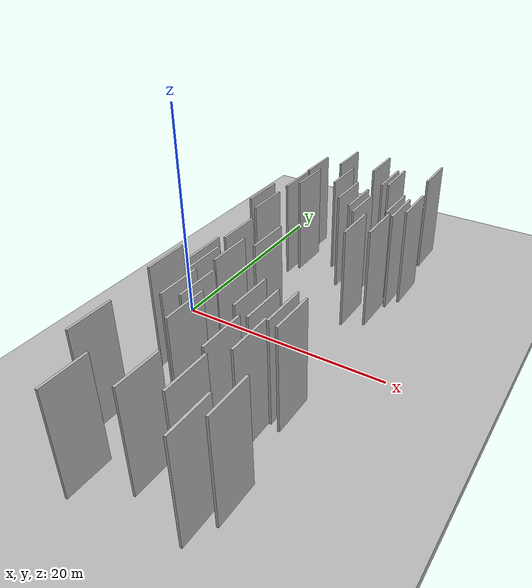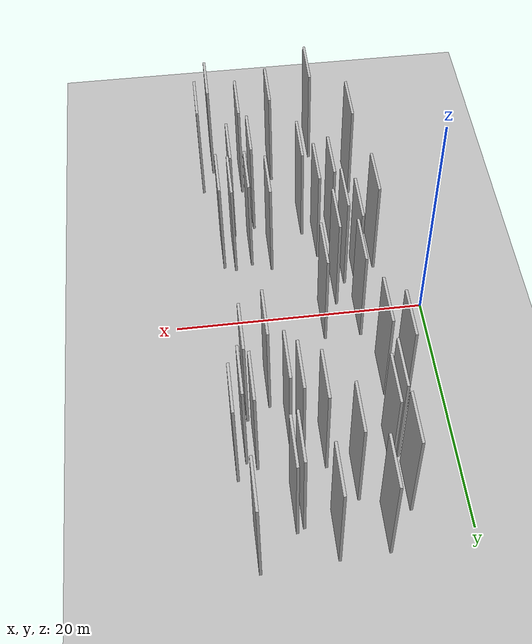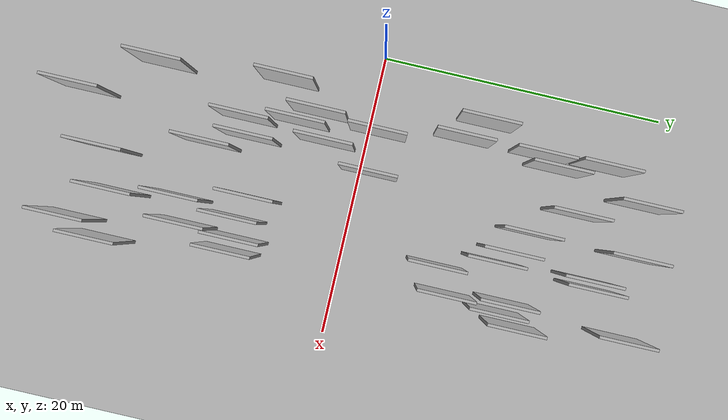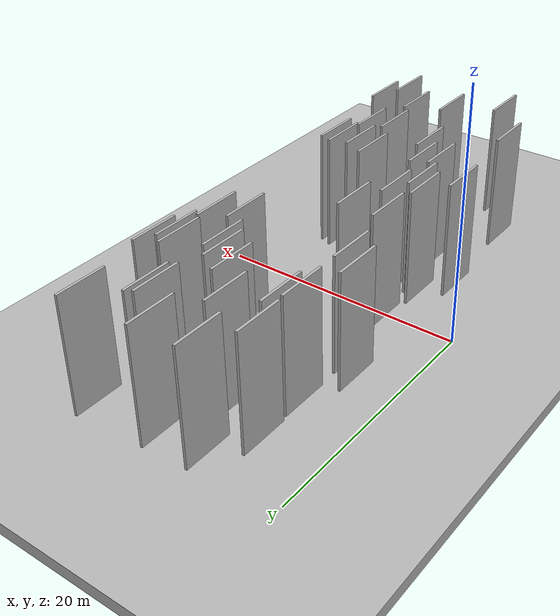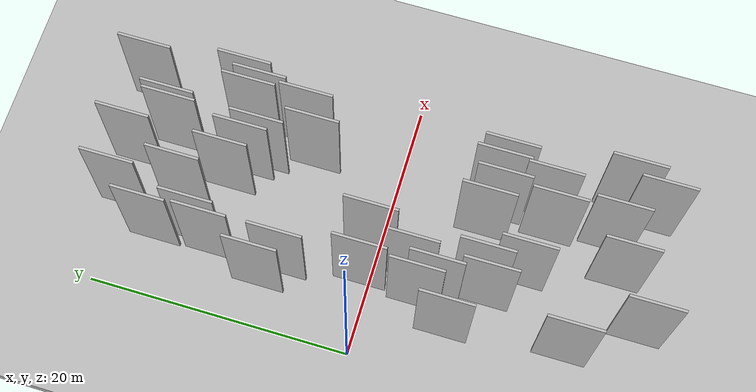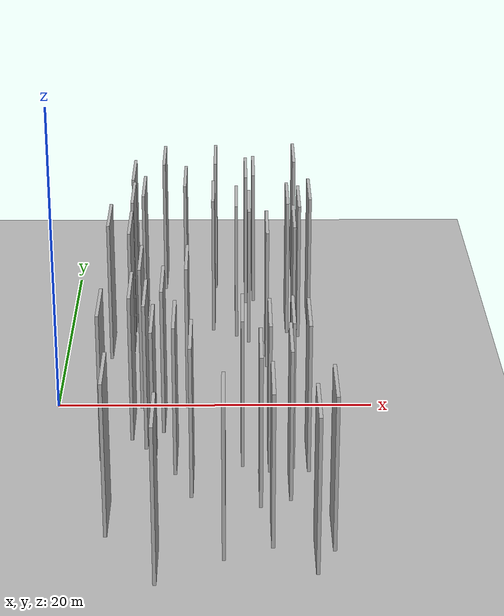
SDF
<?xml version="1.0" encoding="utf-8"?>

<sdf version="1.6">

   <world name="default">

      <gui fullscreen="0">

         <camera name="user_camera">

            <pose>-15 0 4.57585 0 0 0</pose>

            <view_controller>orbit</view_controller>

         </camera>

      </gui>

      <scene>

         <sky>

           <clouds>

             <speed>12</speed>

           </clouds>

         </sky>

         <ambient>0.4 0.4 0.4 1</ambient>

         <background>0.7 0.7 0.7 1</background>

         <shadows>1</shadows>

      </scene>

      <gravity>0 0 -9.8066</gravity>

      <magnetic_field>6e-06 2.3e-05 -4.2e-05</magnetic_field>

      <physics default="0" name="default_physics" type="ode">

         <ode>

            <solver>

               <type>quick</type>

               <iters>10</iters>

               <sor>1.0</sor>

               <use_dynamic_moi_rescaling>0</use_dynamic_moi_rescaling>

            </solver>

            <constraints>

               <cfm>0</cfm>

               <erp>0.2</erp>

               <contact_max_correcting_vel>100</contact_max_correcting_vel>

               <contact_surface_layer>0.001</contact_surface_layer>

            </constraints>

         </ode>

         <max_step_size>0.004</max_step_size>

         <real_time_factor>1</real_time_factor>

         <real_time_update_rate>250</real_time_update_rate>

      </physics>

      <light name="sun" type="directional">

         <cast_shadows>1</cast_shadows>

         <pose>0 0 10 0 0 0</pose>

         <diffuse>0.8 0.8 0.8 1</diffuse>

         <specular>0.2 0.2 0.2 1</specular>

         <attenuation>

            <range>1000</range>

            <constant>0.9</constant>

            <linear>0.01</linear>

            <quadratic>0.001</quadratic>

         </attenuation>

         <direction>-0.5 0.1 -0.9</direction>

      </light>

      <include>

         <name>ground_plane_1</name>

         <uri>model://HANNAS_ground_plane</uri>

         <pose>0 0 0  0 0 0</pose>

      </include>

      <include>

         <name>ground_plane_2</name>

         <uri>model://HANNAS_ground_plane</uri>

         <pose>100 0 0  0 0 0</pose>

      </include>

      <model name="HANNAS_wall_1">

         <static>1</static>

         <pose frame="">6.4641 -8.3919 0.0 0.000000 0.000000 1.570796</pose>

         <link name="link">

            <pose frame="">0 0 5.00 0 0 0</pose>

            <collision name="collision">

               <geometry>

                  <box>

                     <size>4.00 0.2 10.00</size>

                  </box>

               </geometry>

               <max_contacts>10</max_contacts>

               <surface>

                  <contact>

                     <ode/>

                  </contact>

                  <bounce/>

                  <friction>

                     <torsional>

                        <ode/>

                     </torsional>

                     <ode/>

                  </friction>

               </surface>

            </collision>

            <visual name="visual">

               <cast_shadows>0</cast_shadows>

               <geometry>

                  <box>

                     <size>4.00 0.2 10.00</size>

                  </box>

               </geometry>

               <material>

                  <script>

                     <uri>model://HANNAS_wall/materials/scripts</uri>

                     <uri>model://HANNAS_wall/materials/textures</uri>

                     <name>vrc/HANNAS_wall</name>

                  </script>

               </material>

            </visual>

            <self_collide>0</self_collide>

            <enable_wind>0</enable_wind>

            <kinematic>0</kinematic>

         </link>

      </model>

      <model name="HANNAS_wall_2">

         <static>1</static>

         <pose frame="">3.2707 -6.1076 0.0 0.000000 0.000000 1.570796</pose>

         <link name="link">

            <pose frame="">0 0 5.00 0 0 0</pose>

            <collision name="collision">

               <geometry>

                  <box>

                     <size>4.00 0.2 10.00</size>

                  </box>

               </geometry>

               <max_contacts>10</max_contacts>

               <surface>

                  <contact>

                     <ode/>

                  </contact>

                  <bounce/>

                  <friction>

                     <torsional>

                        <ode/>

                     </torsional>

                     <ode/>

                  </friction>

               </surface>

            </collision>

            <visual name="visual">

               <cast_shadows>0</cast_shadows>

               <geometry>

                  <box>

                     <size>4.00 0.2 10.00</size>

                  </box>

               </geometry>

               <material>

                  <script>

                     <uri>model://HANNAS_wall/materials/scripts</uri>

                     <uri>model://HANNAS_wall/materials/textures</uri>

                     <name>vrc/HANNAS_wall</name>

                  </script>

               </material>

            </visual>

            <self_collide>0</self_collide>

            <enable_wind>0</enable_wind>

            <kinematic>0</kinematic>

         </link>

      </model>

      <model name="HANNAS_wall_3">

         <static>1</static>

         <pose frame="">4.9851 -3.5386 0.0 0.000000 0.000000 1.570796</pose>

         <link name="link">

            <pose frame="">0 0 5.00 0 0 0</pose>

            <collision name="collision">

               <geometry>

                  <box>

                     <size>4.00 0.2 10.00</size>

                  </box>

               </geometry>

               <max_contacts>10</max_contacts>

               <surface>

                  <contact>

                     <ode/>

                  </contact>

                  <bounce/>

                  <friction>

                     <torsional>

                        <ode/>

                     </torsional>

                     <ode/>

                  </friction>

               </surface>

            </collision>

            <visual name="visual">

               <cast_shadows>0</cast_shadows>

               <geometry>

                  <box>

                     <size>4.00 0.2 10.00</size>

                  </box>

               </geometry>

               <material>

                  <script>

                     <uri>model://HANNAS_wall/materials/scripts</uri>

                     <uri>model://HANNAS_wall/materials/textures</uri>

                     <name>vrc/HANNAS_wall</name>

                  </script>

               </material>

            </visual>

            <self_collide>0</self_collide>

            <enable_wind>0</enable_wind>

            <kinematic>0</kinematic>

         </link>

      </model>

      <model name="HANNAS_wall_4">

         <static>1</static>

         <pose frame="">5.1430 13.1604 0.0 0.000000 0.000000 1.570796</pose>

         <link name="link">

            <pose frame="">0 0 5.00 0 0 0</pose>

            <collision name="collision">

               <geometry>

                  <box>

                     <size>4.00 0.2 10.00</size>

                  </box>

               </geometry>

               <max_contacts>10</max_contacts>

               <surface>

                  <contact>

                     <ode/>

                  </contact>

                  <bounce/>

                  <friction>

                     <torsional>

                        <ode/>

                     </torsional>

                     <ode/>

                  </friction>

               </surface>

            </collision>

            <visual name="visual">

               <cast_shadows>0</cast_shadows>

               <geometry>

                  <box>

                     <size>4.00 0.2 10.00</size>

                  </box>

               </geometry>

               <material>

                  <script>

                     <uri>model://HANNAS_wall/materials/scripts</uri>

                     <uri>model://HANNAS_wall/materials/textures</uri>

                     <name>vrc/HANNAS_wall</name>

                  </script>

               </material>

            </visual>

            <self_collide>0</self_collide>

            <enable_wind>0</enable_wind>

            <kinematic>0</kinematic>

         </link>

      </model>

      <model name="HANNAS_wall_5">

         <static>1</static>

         <pose frame="">13.3488 -16.0452 0.0 0.000000 0.000000 1.570796</pose>

         <link name="link">

            <pose frame="">0 0 5.00 0 0 0</pose>

            <collision name="collision">

               <geometry>

                  <box>

                     <size>4.00 0.2 10.00</size>

                  </box>

               </geometry>

               <max_contacts>10</max_contacts>

               <surface>

                  <contact>

                     <ode/>

                  </contact>

                  <bounce/>

                  <friction>

                     <torsional>

                        <ode/>

                     </torsional>

                     <ode/>

                  </friction>

               </surface>

            </collision>

            <visual name="visual">

               <cast_shadows>0</cast_shadows>

               <geometry>

                  <box>

                     <size>4.00 0.2 10.00</size>

                  </box>

               </geometry>

               <material>

                  <script>

                     <uri>model://HANNAS_wall/materials/scripts</uri>

                     <uri>model://HANNAS_wall/materials/textures</uri>

                     <name>vrc/HANNAS_wall</name>

                  </script>

               </material>

            </visual>

            <self_collide>0</self_collide>

            <enable_wind>0</enable_wind>

            <kinematic>0</kinematic>

         </link>

      </model>

      <model name="HANNAS_wall_6">

         <static>1</static>

         <pose frame="">14.4889 -10.9155 0.0 0.000000 0.000000 1.570796</pose>

         <link name="link">

            <pose frame="">0 0 5.00 0 0 0</pose>

            <collision name="collision">

               <geometry>

                  <box>

                     <size>4.00 0.2 10.00</size>

                  </box>

               </geometry>

               <max_contacts>10</max_contacts>

               <surface>

                  <contact>

                     <ode/>

                  </contact>

                  <bounce/>

                  <friction>

                     <torsional>

                        <ode/>

                     </torsional>

                     <ode/>

                  </friction>

               </surface>

            </collision>

            <visual name="visual">

               <cast_shadows>0</cast_shadows>

               <geometry>

                  <box>

                     <size>4.00 0.2 10.00</size>

                  </box>

               </geometry>

               <material>

                  <script>

                     <uri>model://HANNAS_wall/materials/scripts</uri>

                     <uri>model://HANNAS_wall/materials/textures</uri>

                     <name>vrc/HANNAS_wall</name>

                  </script>

               </material>

            </visual>

            <self_collide>0</self_collide>

            <enable_wind>0</enable_wind>

            <kinematic>0</kinematic>

         </link>

      </model>

      <model name="HANNAS_wall_7">

         <static>1</static>

         <pose frame="">4.4972 6.5110 0.0 0.000000 0.000000 1.570796</pose>

         <link name="link">

            <pose frame="">0 0 5.00 0 0 0</pose>

            <collision name="collision">

               <geometry>

                  <box>

                     <size>4.00 0.2 10.00</size>

                  </box>

               </geometry>

               <max_contacts>10</max_contacts>

               <surface>

                  <contact>

                     <ode/>

                  </contact>

                  <bounce/>

                  <friction>

                     <torsional>

                        <ode/>

                     </torsional>

                     <ode/>

                  </friction>

               </surface>

            </collision>

            <visual name="visual">

               <cast_shadows>0</cast_shadows>

               <geometry>

                  <box>

                     <size>4.00 0.2 10.00</size>

                  </box>

               </geometry>

               <material>

                  <script>

                     <uri>model://HANNAS_wall/materials/scripts</uri>

                     <uri>model://HANNAS_wall/materials/textures</uri>

                     <name>vrc/HANNAS_wall</name>

                  </script>

               </material>

            </visual>

            <self_collide>0</self_collide>

            <enable_wind>0</enable_wind>

            <kinematic>0</kinematic>

         </link>

      </model>

      <model name="HANNAS_wall_8">

         <static>1</static>

         <pose frame="">16.3641 12.5826 0.0 0.000000 0.000000 1.570796</pose>

         <link name="link">

            <pose frame="">0 0 5.00 0 0 0</pose>

            <collision name="collision">

               <geometry>

                  <box>

                     <size>4.00 0.2 10.00</size>

                  </box>

               </geometry>

               <max_contacts>10</max_contacts>

               <surface>

                  <contact>

                     <ode/>

                  </contact>

                  <bounce/>

                  <friction>

                     <torsional>

                        <ode/>

                     </torsional>

                     <ode/>

                  </friction>

               </surface>

            </collision>

            <visual name="visual">

               <cast_shadows>0</cast_shadows>

               <geometry>

                  <box>

                     <size>4.00 0.2 10.00</size>

                  </box>

               </geometry>

               <material>

                  <script>

                     <uri>model://HANNAS_wall/materials/scripts</uri>

                     <uri>model://HANNAS_wall/materials/textures</uri>

                     <name>vrc/HANNAS_wall</name>

                  </script>

               </material>

            </visual>

            <self_collide>0</self_collide>

            <enable_wind>0</enable_wind>

            <kinematic>0</kinematic>

         </link>

      </model>

      <model name="HANNAS_wall_9">

         <static>1</static>

         <pose frame="">11.7255 -6.8692 0.0 0.000000 0.000000 1.570796</pose>

         <link name="link">

            <pose frame="">0 0 5.00 0 0 0</pose>

            <collision name="collision">

               <geometry>

                  <box>

                     <size>4.00 0.2 10.00</size>

                  </box>

               </geometry>

               <max_contacts>10</max_contacts>

               <surface>

                  <contact>

                     <ode/>

                  </contact>

                  <bounce/>

                  <friction>

                     <torsional>

                        <ode/>

                     </torsional>

                     <ode/>

                  </friction>

               </surface>

            </collision>

            <visual name="visual">

               <cast_shadows>0</cast_shadows>

               <geometry>

                  <box>

                     <size>4.00 0.2 10.00</size>

                  </box>

               </geometry>

               <material>

                  <script>

                     <uri>model://HANNAS_wall/materials/scripts</uri>

                     <uri>model://HANNAS_wall/materials/textures</uri>

                     <name>vrc/HANNAS_wall</name>

                  </script>

               </material>

            </visual>

            <self_collide>0</self_collide>

            <enable_wind>0</enable_wind>

            <kinematic>0</kinematic>

         </link>

      </model>

      <model name="HANNAS_wall_10">

         <static>1</static>

         <pose frame="">6.8832 -2.6249 0.0 0.000000 0.000000 1.570796</pose>

         <link name="link">

            <pose frame="">0 0 5.00 0 0 0</pose>

            <collision name="collision">

               <geometry>

                  <box>

                     <size>4.00 0.2 10.00</size>

                  </box>

               </geometry>

               <max_contacts>10</max_contacts>

               <surface>

                  <contact>

                     <ode/>

                  </contact>

                  <bounce/>

                  <friction>

                     <torsional>

                        <ode/>

                     </torsional>

                     <ode/>

                  </friction>

               </surface>

            </collision>

            <visual name="visual">

               <cast_shadows>0</cast_shadows>

               <geometry>

                  <box>

                     <size>4.00 0.2 10.00</size>

                  </box>

               </geometry>

               <material>

                  <script>

                     <uri>model://HANNAS_wall/materials/scripts</uri>

                     <uri>model://HANNAS_wall/materials/textures</uri>

                     <name>vrc/HANNAS_wall</name>

                  </script>

               </material>

            </visual>

            <self_collide>0</self_collide>

            <enable_wind>0</enable_wind>

            <kinematic>0</kinematic>

         </link>

      </model>

      <model name="HANNAS_wall_11">

         <static>1</static>

         <pose frame="">7.9041 15.1104 0.0 0.000000 0.000000 1.570796</pose>

         <link name="link">

            <pose frame="">0 0 5.00 0 0 0</pose>

            <collision name="collision">

               <geometry>

                  <box>

                     <size>4.00 0.2 10.00</size>

                  </box>

               </geometry>

               <max_contacts>10</max_contacts>

               <surface>

                  <contact>

                     <ode/>

                  </contact>

                  <bounce/>

                  <friction>

                     <torsional>

                        <ode/>

                     </torsional>

                     <ode/>

                  </friction>

               </surface>

            </collision>

            <visual name="visual">

               <cast_shadows>0</cast_shadows>

               <geometry>

                  <box>

                     <size>4.00 0.2 10.00</size>

                  </box>

               </geometry>

               <material>

                  <script>

                     <uri>model://HANNAS_wall/materials/scripts</uri>

                     <uri>model://HANNAS_wall/materials/textures</uri>

                     <name>vrc/HANNAS_wall</name>

                  </script>

               </material>

            </visual>

            <self_collide>0</self_collide>

            <enable_wind>0</enable_wind>

            <kinematic>0</kinematic>

         </link>

      </model>

      <model name="HANNAS_wall_12">

         <static>1</static>

         <pose frame="">3.0862 7.8580 0.0 0.000000 0.000000 1.570796</pose>

         <link name="link">

            <pose frame="">0 0 5.00 0 0 0</pose>

            <collision name="collision">

               <geometry>

                  <box>

                     <size>4.00 0.2 10.00</size>

                  </box>

               </geometry>

               <max_contacts>10</max_contacts>

               <surface>

                  <contact>

                     <ode/>

                  </contact>

                  <bounce/>

                  <friction>

                     <torsional>

                        <ode/>

                     </torsional>

                     <ode/>

                  </friction>

               </surface>

            </collision>

            <visual name="visual">

               <cast_shadows>0</cast_shadows>

               <geometry>

                  <box>

                     <size>4.00 0.2 10.00</size>

                  </box>

               </geometry>

               <material>

                  <script>

                     <uri>model://HANNAS_wall/materials/scripts</uri>

                     <uri>model://HANNAS_wall/materials/textures</uri>

                     <name>vrc/HANNAS_wall</name>

                  </script>

               </material>

            </visual>

            <self_collide>0</self_collide>

            <enable_wind>0</enable_wind>

            <kinematic>0</kinematic>

         </link>

      </model>

      <model name="HANNAS_wall_13">

         <static>1</static>

         <pose frame="">7.7329 -7.8007 0.0 0.000000 0.000000 1.570796</pose>

         <link name="link">

            <pose frame="">0 0 5.00 0 0 0</pose>

            <collision name="collision">

               <geometry>

                  <box>

                     <size>4.00 0.2 10.00</size>

                  </box>

               </geometry>

               <max_contacts>10</max_contacts>

               <surface>

                  <contact>

                     <ode/>

                  </contact>

                  <bounce/>

                  <friction>

                     <torsional>

                        <ode/>

                     </torsional>

                     <ode/>

                  </friction>

               </surface>

            </collision>

            <visual name="visual">

               <cast_shadows>0</cast_shadows>

               <geometry>

                  <box>

                     <size>4.00 0.2 10.00</size>

                  </box>

               </geometry>

               <material>

                  <script>

                     <uri>model://HANNAS_wall/materials/scripts</uri>

                     <uri>model://HANNAS_wall/materials/textures</uri>

                     <name>vrc/HANNAS_wall</name>

                  </script>

               </material>

            </visual>

            <self_collide>0</self_collide>

            <enable_wind>0</enable_wind>

            <kinematic>0</kinematic>

         </link>

      </model>

      <model name="HANNAS_wall_14">

         <static>1</static>

         <pose frame="">12.0734 16.8459 0.0 0.000000 0.000000 1.570796</pose>

         <link name="link">

            <pose frame="">0 0 5.00 0 0 0</pose>

            <collision name="collision">

               <geometry>

                  <box>

                     <size>4.00 0.2 10.00</size>

                  </box>

               </geometry>

               <max_contacts>10</max_contacts>

               <surface>

                  <contact>

                     <ode/>

                  </contact>

                  <bounce/>

                  <friction>

                     <torsional>

                        <ode/>

                     </torsional>

                     <ode/>

                  </friction>

               </surface>

            </collision>

            <visual name="visual">

               <cast_shadows>0</cast_shadows>

               <geometry>

                  <box>

                     <size>4.00 0.2 10.00</size>

                  </box>

               </geometry>

               <material>

                  <script>

                     <uri>model://HANNAS_wall/materials/scripts</uri>

                     <uri>model://HANNAS_wall/materials/textures</uri>

                     <name>vrc/HANNAS_wall</name>

                  </script>

               </material>

            </visual>

            <self_collide>0</self_collide>

            <enable_wind>0</enable_wind>

            <kinematic>0</kinematic>

         </link>

      </model>

      <model name="HANNAS_wall_15">

         <static>1</static>

         <pose frame="">15.5030 19.8872 0.0 0.000000 0.000000 1.570796</pose>

         <link name="link">

            <pose frame="">0 0 5.00 0 0 0</pose>

            <collision name="collision">

               <geometry>

                  <box>

                     <size>4.00 0.2 10.00</size>

                  </box>

               </geometry>

               <max_contacts>10</max_contacts>

               <surface>

                  <contact>

                     <ode/>

                  </contact>

                  <bounce/>

                  <friction>

                     <torsional>

                        <ode/>

                     </torsional>

                     <ode/>

                  </friction>

               </surface>

            </collision>

            <visual name="visual">

               <cast_shadows>0</cast_shadows>

               <geometry>

                  <box>

                     <size>4.00 0.2 10.00</size>

                  </box>

               </geometry>

               <material>

                  <script>

                     <uri>model://HANNAS_wall/materials/scripts</uri>

                     <uri>model://HANNAS_wall/materials/textures</uri>

                     <name>vrc/HANNAS_wall</name>

                  </script>

               </material>

            </visual>

            <self_collide>0</self_collide>

            <enable_wind>0</enable_wind>

            <kinematic>0</kinematic>

         </link>

      </model>

      <model name="HANNAS_wall_16">

         <static>1</static>

         <pose frame="">4.0204 -14.8153 0.0 0.000000 0.000000 1.570796</pose>

         <link name="link">

            <pose frame="">0 0 5.00 0 0 0</pose>

            <collision name="collision">

               <geometry>

                  <box>

                     <size>4.00 0.2 10.00</size>

                  </box>

               </geometry>

               <max_contacts>10</max_contacts>

               <surface>

                  <contact>

                     <ode/>

                  </contact>

                  <bounce/>

                  <friction>

                     <torsional>

                        <ode/>

                     </torsional>

                     <ode/>

                  </friction>

               </surface>

            </collision>

            <visual name="visual">

               <cast_shadows>0</cast_shadows>

               <geometry>

                  <box>

                     <size>4.00 0.2 10.00</size>

                  </box>

               </geometry>

               <material>

                  <script>

                     <uri>model://HANNAS_wall/materials/scripts</uri>

                     <uri>model://HANNAS_wall/materials/textures</uri>

                     <name>vrc/HANNAS_wall</name>

                  </script>

               </material>

            </visual>

            <self_collide>0</self_collide>

            <enable_wind>0</enable_wind>

            <kinematic>0</kinematic>

         </link>

      </model>

      <model name="HANNAS_wall_17">

         <static>1</static>

         <pose frame="">16.7420 -16.3903 0.0 0.000000 0.000000 1.570796</pose>

         <link name="link">

            <pose frame="">0 0 5.00 0 0 0</pose>

            <collision name="collision">

               <geometry>

                  <box>

                     <size>4.00 0.2 10.00</size>

                  </box>

               </geometry>

               <max_contacts>10</max_contacts>

               <surface>

                  <contact>

                     <ode/>

                  </contact>

                  <bounce/>

                  <friction>

                     <torsional>

                        <ode/>

                     </torsional>

                     <ode/>

                  </friction>

               </surface>

            </collision>

            <visual name="visual">

               <cast_shadows>0</cast_shadows>

               <geometry>

                  <box>

                     <size>4.00 0.2 10.00</size>

                  </box>

               </geometry>

               <material>

                  <script>

                     <uri>model://HANNAS_wall/materials/scripts</uri>

                     <uri>model://HANNAS_wall/materials/textures</uri>

                     <name>vrc/HANNAS_wall</name>

                  </script>

               </material>

            </visual>

            <self_collide>0</self_collide>

            <enable_wind>0</enable_wind>

            <kinematic>0</kinematic>

         </link>

      </model>

      <model name="HANNAS_wall_18">

         <static>1</static>

         <pose frame="">12.6062 17.1586 0.0 0.000000 0.000000 1.570796</pose>

         <link name="link">

            <pose frame="">0 0 5.00 0 0 0</pose>

            <collision name="collision">

               <geometry>

                  <box>

                     <size>4.00 0.2 10.00</size>

                  </box>

               </geometry>

               <max_contacts>10</max_contacts>

               <surface>

                  <contact>

                     <ode/>

                  </contact>

                  <bounce/>

                  <friction>

                     <torsional>

                        <ode/>

                     </torsional>

                     <ode/>

                  </friction>

               </surface>

            </collision>

            <visual name="visual">

               <cast_shadows>0</cast_shadows>

               <geometry>

                  <box>

                     <size>4.00 0.2 10.00</size>

                  </box>

               </geometry>

               <material>

                  <script>

                     <uri>model://HANNAS_wall/materials/scripts</uri>

                     <uri>model://HANNAS_wall/materials/textures</uri>

                     <name>vrc/HANNAS_wall</name>

                  </script>

               </material>

            </visual>

            <self_collide>0</self_collide>

            <enable_wind>0</enable_wind>

            <kinematic>0</kinematic>

         </link>

      </model>

      <model name="HANNAS_wall_19">

         <static>1</static>

         <pose frame="">6.3363 19.3826 0.0 0.000000 0.000000 1.570796</pose>

         <link name="link">

            <pose frame="">0 0 5.00 0 0 0</pose>

            <collision name="collision">

               <geometry>

                  <box>

                     <size>4.00 0.2 10.00</size>

                  </box>

               </geometry>

               <max_contacts>10</max_contacts>

               <surface>

                  <contact>

                     <ode/>

                  </contact>

                  <bounce/>

                  <friction>

                     <torsional>

                        <ode/>

                     </torsional>

                     <ode/>

                  </friction>

               </surface>

            </collision>

            <visual name="visual">

               <cast_shadows>0</cast_shadows>

               <geometry>

                  <box>

                     <size>4.00 0.2 10.00</size>

                  </box>

               </geometry>

               <material>

                  <script>

                     <uri>model://HANNAS_wall/materials/scripts</uri>

                     <uri>model://HANNAS_wall/materials/textures</uri>

                     <name>vrc/HANNAS_wall</name>

                  </script>

               </material>

            </visual>

            <self_collide>0</self_collide>

            <enable_wind>0</enable_wind>

            <kinematic>0</kinematic>

         </link>

      </model>

      <model name="HANNAS_wall_20">

         <static>1</static>

         <pose frame="">14.8524 11.7805 0.0 0.000000 0.000000 1.570796</pose>

         <link name="link">

            <pose frame="">0 0 5.00 0 0 0</pose>

            <collision name="collision">

               <geometry>

                  <box>

                     <size>4.00 0.2 10.00</size>

                  </box>

               </geometry>

               <max_contacts>10</max_contacts>

               <surface>

                  <contact>

                     <ode/>

                  </contact>

                  <bounce/>

                  <friction>

                     <torsional>

                        <ode/>

                     </torsional>

                     <ode/>

                  </friction>

               </surface>

            </collision>

            <visual name="visual">

               <cast_shadows>0</cast_shadows>

               <geometry>

                  <box>

                     <size>4.00 0.2 10.00</size>

                  </box>

               </geometry>

               <material>

                  <script>

                     <uri>model://HANNAS_wall/materials/scripts</uri>

                     <uri>model://HANNAS_wall/materials/textures</uri>

                     <name>vrc/HANNAS_wall</name>

                  </script>

               </material>

            </visual>

            <self_collide>0</self_collide>

            <enable_wind>0</enable_wind>

            <kinematic>0</kinematic>

         </link>

      </model>

      <model name="HANNAS_wall_21">

         <static>1</static>

         <pose frame="">15.6039 11.2042 0.0 0.000000 0.000000 1.570796</pose>

         <link name="link">

            <pose frame="">0 0 5.00 0 0 0</pose>

            <collision name="collision">

               <geometry>

                  <box>

                     <size>4.00 0.2 10.00</size>

                  </box>

               </geometry>

               <max_contacts>10</max_contacts>

               <surface>

                  <contact>

                     <ode/>

                  </contact>

                  <bounce/>

                  <friction>

                     <torsional>

                        <ode/>

                     </torsional>

                     <ode/>

                  </friction>

               </surface>

            </collision>

            <visual name="visual">

               <cast_shadows>0</cast_shadows>

               <geometry>

                  <box>

                     <size>4.00 0.2 10.00</size>

                  </box>

               </geometry>

               <material>

                  <script>

                     <uri>model://HANNAS_wall/materials/scripts</uri>

                     <uri>model://HANNAS_wall/materials/textures</uri>

                     <name>vrc/HANNAS_wall</name>

                  </script>

               </material>

            </visual>

            <self_collide>0</self_collide>

            <enable_wind>0</enable_wind>

            <kinematic>0</kinematic>

         </link>

      </model>

      <model name="HANNAS_wall_22">

         <static>1</static>

         <pose frame="">14.7112 -7.1563 0.0 0.000000 0.000000 1.570796</pose>

         <link name="link">

            <pose frame="">0 0 5.00 0 0 0</pose>

            <collision name="collision">

               <geometry>

                  <box>

                     <size>4.00 0.2 10.00</size>

                  </box>

               </geometry>

               <max_contacts>10</max_contacts>

               <surface>

                  <contact>

                     <ode/>

                  </contact>

                  <bounce/>

                  <friction>

                     <torsional>

                        <ode/>

                     </torsional>

                     <ode/>

                  </friction>

               </surface>

            </collision>

            <visual name="visual">

               <cast_shadows>0</cast_shadows>

               <geometry>

                  <box>

                     <size>4.00 0.2 10.00</size>

                  </box>

               </geometry>

               <material>

                  <script>

                     <uri>model://HANNAS_wall/materials/scripts</uri>

                     <uri>model://HANNAS_wall/materials/textures</uri>

                     <name>vrc/HANNAS_wall</name>

                  </script>

               </material>

            </visual>

            <self_collide>0</self_collide>

            <enable_wind>0</enable_wind>

            <kinematic>0</kinematic>

         </link>

      </model>

      <model name="HANNAS_wall_23">

         <static>1</static>

         <pose frame="">13.3984 6.5798 0.0 0.000000 0.000000 1.570796</pose>

         <link name="link">

            <pose frame="">0 0 5.00 0 0 0</pose>

            <collision name="collision">

               <geometry>

                  <box>

                     <size>4.00 0.2 10.00</size>

                  </box>

               </geometry>

               <max_contacts>10</max_contacts>

               <surface>

                  <contact>

                     <ode/>

                  </contact>

                  <bounce/>

                  <friction>

                     <torsional>

                        <ode/>

                     </torsional>

                     <ode/>

                  </friction>

               </surface>

            </collision>

            <visual name="visual">

               <cast_shadows>0</cast_shadows>

               <geometry>

                  <box>

                     <size>4.00 0.2 10.00</size>

                  </box>

               </geometry>

               <material>

                  <script>

                     <uri>model://HANNAS_wall/materials/scripts</uri>

                     <uri>model://HANNAS_wall/materials/textures</uri>

                     <name>vrc/HANNAS_wall</name>

                  </script>

               </material>

            </visual>

            <self_collide>0</self_collide>

            <enable_wind>0</enable_wind>

            <kinematic>0</kinematic>

         </link>

      </model>

      <model name="HANNAS_wall_24">

         <static>1</static>

         <pose frame="">15.7209 -18.7100 0.0 0.000000 0.000000 1.570796</pose>

         <link name="link">

            <pose frame="">0 0 5.00 0 0 0</pose>

            <collision name="collision">

               <geometry>

                  <box>

                     <size>4.00 0.2 10.00</size>

                  </box>

               </geometry>

               <max_contacts>10</max_contacts>

               <surface>

                  <contact>

                     <ode/>

                  </contact>

                  <bounce/>

                  <friction>

                     <torsional>

                        <ode/>

                     </torsional>

                     <ode/>

                  </friction>

               </surface>

            </collision>

            <visual name="visual">

               <cast_shadows>0</cast_shadows>

               <geometry>

                  <box>

                     <size>4.00 0.2 10.00</size>

                  </box>

               </geometry>

               <material>

                  <script>

                     <uri>model://HANNAS_wall/materials/scripts</uri>

                     <uri>model://HANNAS_wall/materials/textures</uri>

                     <name>vrc/HANNAS_wall</name>

                  </script>

               </material>

            </visual>

            <self_collide>0</self_collide>

            <enable_wind>0</enable_wind>

            <kinematic>0</kinematic>

         </link>

      </model>

      <model name="HANNAS_wall_25">

         <static>1</static>

         <pose frame="">12.7490 -11.6492 0.0 0.000000 0.000000 1.570796</pose>

         <link name="link">

            <pose frame="">0 0 5.00 0 0 0</pose>

            <collision name="collision">

               <geometry>

                  <box>

                     <size>4.00 0.2 10.00</size>

                  </box>

               </geometry>

               <max_contacts>10</max_contacts>

               <surface>

                  <contact>

                     <ode/>

                  </contact>

                  <bounce/>

                  <friction>

                     <torsional>

                        <ode/>

                     </torsional>

                     <ode/>

                  </friction>

               </surface>

            </collision>

            <visual name="visual">

               <cast_shadows>0</cast_shadows>

               <geometry>

                  <box>

                     <size>4.00 0.2 10.00</size>

                  </box>

               </geometry>

               <material>

                  <script>

                     <uri>model://HANNAS_wall/materials/scripts</uri>

                     <uri>model://HANNAS_wall/materials/textures</uri>

                     <name>vrc/HANNAS_wall</name>

                  </script>

               </material>

            </visual>

            <self_collide>0</self_collide>

            <enable_wind>0</enable_wind>

            <kinematic>0</kinematic>

         </link>

      </model>

      <model name="HANNAS_wall_26">

         <static>1</static>

         <pose frame="">4.4534 11.9625 0.0 0.000000 0.000000 1.570796</pose>

         <link name="link">

            <pose frame="">0 0 5.00 0 0 0</pose>

            <collision name="collision">

               <geometry>

                  <box>

                     <size>4.00 0.2 10.00</size>

                  </box>

               </geometry>

               <max_contacts>10</max_contacts>

               <surface>

                  <contact>

                     <ode/>

                  </contact>

                  <bounce/>

                  <friction>

                     <torsional>

                        <ode/>

                     </torsional>

                     <ode/>

                  </friction>

               </surface>

            </collision>

            <visual name="visual">

               <cast_shadows>0</cast_shadows>

               <geometry>

                  <box>

                     <size>4.00 0.2 10.00</size>

                  </box>

               </geometry>

               <material>

                  <script>

                     <uri>model://HANNAS_wall/materials/scripts</uri>

                     <uri>model://HANNAS_wall/materials/textures</uri>

                     <name>vrc/HANNAS_wall</name>

                  </script>

               </material>

            </visual>

            <self_collide>0</self_collide>

            <enable_wind>0</enable_wind>

            <kinematic>0</kinematic>

         </link>

      </model>

      <model name="HANNAS_wall_27">

         <static>1</static>

         <pose frame="">15.6410 -7.4995 0.0 0.000000 0.000000 1.570796</pose>

         <link name="link">

            <pose frame="">0 0 5.00 0 0 0</pose>

            <collision name="collision">

               <geometry>

                  <box>

                     <size>4.00 0.2 10.00</size>

                  </box>

               </geometry>

               <max_contacts>10</max_contacts>

               <surface>

                  <contact>

                     <ode/>

                  </contact>

                  <bounce/>

                  <friction>

                     <torsional>

                        <ode/>

                     </torsional>

                     <ode/>

                  </friction>

               </surface>

            </collision>

            <visual name="visual">

               <cast_shadows>0</cast_shadows>

               <geometry>

                  <box>

                     <size>4.00 0.2 10.00</size>

                  </box>

               </geometry>

               <material>

                  <script>

                     <uri>model://HANNAS_wall/materials/scripts</uri>

                     <uri>model://HANNAS_wall/materials/textures</uri>

                     <name>vrc/HANNAS_wall</name>

                  </script>

               </material>

            </visual>

            <self_collide>0</self_collide>

            <enable_wind>0</enable_wind>

            <kinematic>0</kinematic>

         </link>

      </model>

      <model name="HANNAS_wall_28">

         <static>1</static>

         <pose frame="">6.9422 -19.7287 0.0 0.000000 0.000000 1.570796</pose>

         <link name="link">

            <pose frame="">0 0 5.00 0 0 0</pose>

            <collision name="collision">

               <geometry>

                  <box>

                     <size>4.00 0.2 10.00</size>

                  </box>

               </geometry>

               <max_contacts>10</max_contacts>

               <surface>

                  <contact>

                     <ode/>

                  </contact>

                  <bounce/>

                  <friction>

                     <torsional>

                        <ode/>

                     </torsional>

                     <ode/>

                  </friction>

               </surface>

            </collision>

            <visual name="visual">

               <cast_shadows>0</cast_shadows>

               <geometry>

                  <box>

                     <size>4.00 0.2 10.00</size>

                  </box>

               </geometry>

               <material>

                  <script>

                     <uri>model://HANNAS_wall/materials/scripts</uri>

                     <uri>model://HANNAS_wall/materials/textures</uri>

                     <name>vrc/HANNAS_wall</name>

                  </script>

               </material>

            </visual>

            <self_collide>0</self_collide>

            <enable_wind>0</enable_wind>

            <kinematic>0</kinematic>

         </link>

      </model>

      <model name="HANNAS_wall_29">

         <static>1</static>

         <pose frame="">9.9422 19.5393 0.0 0.000000 0.000000 1.570796</pose>

         <link name="link">

            <pose frame="">0 0 5.00 0 0 0</pose>

            <collision name="collision">

               <geometry>

                  <box>

                     <size>4.00 0.2 10.00</size>

                  </box>

               </geometry>

               <max_contacts>10</max_contacts>

               <surface>

                  <contact>

                     <ode/>

                  </contact>

                  <bounce/>

                  <friction>

                     <torsional>

                        <ode/>

                     </torsional>

                     <ode/>

                  </friction>

               </surface>

            </collision>

            <visual name="visual">

               <cast_shadows>0</cast_shadows>

               <geometry>

                  <box>

                     <size>4.00 0.2 10.00</size>

                  </box>

               </geometry>

               <material>

                  <script>

                     <uri>model://HANNAS_wall/materials/scripts</uri>

                     <uri>model://HANNAS_wall/materials/textures</uri>

                     <name>vrc/HANNAS_wall</name>

                  </script>

               </material>

            </visual>

            <self_collide>0</self_collide>

            <enable_wind>0</enable_wind>

            <kinematic>0</kinematic>

         </link>

      </model>

      <model name="HANNAS_wall_30">

         <static>1</static>

         <pose frame="">13.3312 -7.5712 0.0 0.000000 0.000000 1.570796</pose>

         <link name="link">

            <pose frame="">0 0 5.00 0 0 0</pose>

            <collision name="collision">

               <geometry>

                  <box>

                     <size>4.00 0.2 10.00</size>

                  </box>

               </geometry>

               <max_contacts>10</max_contacts>

               <surface>

                  <contact>

                     <ode/>

                  </contact>

                  <bounce/>

                  <friction>

                     <torsional>

                        <ode/>

                     </torsional>

                     <ode/>

                  </friction>

               </surface>

            </collision>

            <visual name="visual">

               <cast_shadows>0</cast_shadows>

               <geometry>

                  <box>

                     <size>4.00 0.2 10.00</size>

                  </box>

               </geometry>

               <material>

                  <script>

                     <uri>model://HANNAS_wall/materials/scripts</uri>

                     <uri>model://HANNAS_wall/materials/textures</uri>

                     <name>vrc/HANNAS_wall</name>

                  </script>

               </material>

            </visual>

            <self_collide>0</self_collide>

            <enable_wind>0</enable_wind>

            <kinematic>0</kinematic>

         </link>

      </model>

      <model name="HANNAS_wall_31">

         <static>1</static>

         <pose frame="">11.4057 11.2672 0.0 0.000000 0.000000 1.570796</pose>

         <link name="link">

            <pose frame="">0 0 5.00 0 0 0</pose>

            <collision name="collision">

               <geometry>

                  <box>

                     <size>4.00 0.2 10.00</size>

                  </box>

               </geometry>

               <max_contacts>10</max_contacts>

               <surface>

                  <contact>

                     <ode/>

                  </contact>

                  <bounce/>

                  <friction>

                     <torsional>

                        <ode/>

                     </torsional>

                     <ode/>

                  </friction>

               </surface>

            </collision>

            <visual name="visual">

               <cast_shadows>0</cast_shadows>

               <geometry>

                  <box>

                     <size>4.00 0.2 10.00</size>

                  </box>

               </geometry>

               <material>

                  <script>

                     <uri>model://HANNAS_wall/materials/scripts</uri>

                     <uri>model://HANNAS_wall/materials/textures</uri>

                     <name>vrc/HANNAS_wall</name>

                  </script>

               </material>

            </visual>

            <self_collide>0</self_collide>

            <enable_wind>0</enable_wind>

            <kinematic>0</kinematic>

         </link>

      </model>

      <model name="HANNAS_wall_32">

         <static>1</static>

         <pose frame="">15.1852 7.5910 0.0 0.000000 0.000000 1.570796</pose>

         <link name="link">

            <pose frame="">0 0 5.00 0 0 0</pose>

            <collision name="collision">

               <geometry>

                  <box>

                     <size>4.00 0.2 10.00</size>

                  </box>

               </geometry>

               <max_contacts>10</max_contacts>

               <surface>

                  <contact>

                     <ode/>

                  </contact>

                  <bounce/>

                  <friction>

                     <torsional>

                        <ode/>

                     </torsional>

                     <ode/>

                  </friction>

               </surface>

            </collision>

            <visual name="visual">

               <cast_shadows>0</cast_shadows>

               <geometry>

                  <box>

                     <size>4.00 0.2 10.00</size>

                  </box>

               </geometry>

               <material>

                  <script>

                     <uri>model://HANNAS_wall/materials/scripts</uri>

                     <uri>model://HANNAS_wall/materials/textures</uri>

                     <name>vrc/HANNAS_wall</name>

                  </script>

               </material>

            </visual>

            <self_collide>0</self_collide>

            <enable_wind>0</enable_wind>

            <kinematic>0</kinematic>

         </link>

      </model>

      <model name="HANNAS_wall_33">

         <static>1</static>

         <pose frame="">10.6362 -17.2971 0.0 0.000000 0.000000 1.570796</pose>

         <link name="link">

            <pose frame="">0 0 5.00 0 0 0</pose>

            <collision name="collision">

               <geometry>

                  <box>

                     <size>4.00 0.2 10.00</size>

                  </box>

               </geometry>

               <max_contacts>10</max_contacts>

               <surface>

                  <contact>

                     <ode/>

                  </contact>

                  <bounce/>

                  <friction>

                     <torsional>

                        <ode/>

                     </torsional>

                     <ode/>

                  </friction>

               </surface>

            </collision>

            <visual name="visual">

               <cast_shadows>0</cast_shadows>

               <geometry>

                  <box>

                     <size>4.00 0.2 10.00</size>

                  </box>

               </geometry>

               <material>

                  <script>

                     <uri>model://HANNAS_wall/materials/scripts</uri>

                     <uri>model://HANNAS_wall/materials/textures</uri>

                     <name>vrc/HANNAS_wall</name>

                  </script>

               </material>

            </visual>

            <self_collide>0</self_collide>

            <enable_wind>0</enable_wind>

            <kinematic>0</kinematic>

         </link>

      </model>

      <model name="HANNAS_wall_34">

         <static>1</static>

         <pose frame="">8.7463 -10.4995 0.0 0.000000 0.000000 1.570796</pose>

         <link name="link">

            <pose frame="">0 0 5.00 0 0 0</pose>

            <collision name="collision">

               <geometry>

                  <box>

                     <size>4.00 0.2 10.00</size>

                  </box>

               </geometry>

               <max_contacts>10</max_contacts>

               <surface>

                  <contact>

                     <ode/>

                  </contact>

                  <bounce/>

                  <friction>

                     <torsional>

                        <ode/>

                     </torsional>

                     <ode/>

                  </friction>

               </surface>

            </collision>

            <visual name="visual">

               <cast_shadows>0</cast_shadows>

               <geometry>

                  <box>

                     <size>4.00 0.2 10.00</size>

                  </box>

               </geometry>

               <material>

                  <script>

                     <uri>model://HANNAS_wall/materials/scripts</uri>

                     <uri>model://HANNAS_wall/materials/textures</uri>

                     <name>vrc/HANNAS_wall</name>

                  </script>

               </material>

            </visual>

            <self_collide>0</self_collide>

            <enable_wind>0</enable_wind>

            <kinematic>0</kinematic>

         </link>

      </model>

      <model name="HANNAS_wall_35">

         <static>1</static>

         <pose frame="">9.8456 12.2427 0.0 0.000000 0.000000 1.570796</pose>

         <link name="link">

            <pose frame="">0 0 5.00 0 0 0</pose>

            <collision name="collision">

               <geometry>

                  <box>

                     <size>4.00 0.2 10.00</size>

                  </box>

               </geometry>

               <max_contacts>10</max_contacts>

               <surface>

                  <contact>

                     <ode/>

                  </contact>

                  <bounce/>

                  <friction>

                     <torsional>

                        <ode/>

                     </torsional>

                     <ode/>

                  </friction>

               </surface>

            </collision>

            <visual name="visual">

               <cast_shadows>0</cast_shadows>

               <geometry>

                  <box>

                     <size>4.00 0.2 10.00</size>

                  </box>

               </geometry>

               <material>

                  <script>

                     <uri>model://HANNAS_wall/materials/scripts</uri>

                     <uri>model://HANNAS_wall/materials/textures</uri>

                     <name>vrc/HANNAS_wall</name>

                  </script>

               </material>

            </visual>

            <self_collide>0</self_collide>

            <enable_wind>0</enable_wind>

            <kinematic>0</kinematic>

         </link>

      </model>

      <model name="HANNAS_wall_36">

         <static>1</static>

         <pose frame="">8.2899 0.7191 0.0 0.000000 0.000000 1.570796</pose>

         <link name="link">

            <pose frame="">0 0 5.00 0 0 0</pose>

            <collision name="collision">

               <geometry>

                  <box>

                     <size>4.00 0.2 10.00</size>

                  </box>

               </geometry>

               <max_contacts>10</max_contacts>

               <surface>

                  <contact>

                     <ode/>

                  </contact>

                  <bounce/>

                  <friction>

                     <torsional>

                        <ode/>

                     </torsional>

                     <ode/>

                  </friction>

               </surface>

            </collision>

            <visual name="visual">

               <cast_shadows>0</cast_shadows>

               <geometry>

                  <box>

                     <size>4.00 0.2 10.00</size>

                  </box>

               </geometry>

               <material>

                  <script>

                     <uri>model://HANNAS_wall/materials/scripts</uri>

                     <uri>model://HANNAS_wall/materials/textures</uri>

                     <name>vrc/HANNAS_wall</name>

                  </script>

               </material>

            </visual>

            <self_collide>0</self_collide>

            <enable_wind>0</enable_wind>

            <kinematic>0</kinematic>

         </link>

      </model>

      <model name="HANNAS_wall_37">

         <static>1</static>

         <pose frame="">4.3244 16.3638 0.0 0.000000 0.000000 1.570796</pose>

         <link name="link">

            <pose frame="">0 0 5.00 0 0 0</pose>

            <collision name="collision">

               <geometry>

                  <box>

                     <size>4.00 0.2 10.00</size>

                  </box>

               </geometry>

               <max_contacts>10</max_contacts>

               <surface>

                  <contact>

                     <ode/>

                  </contact>

                  <bounce/>

                  <friction>

                     <torsional>

                        <ode/>

                     </torsional>

                     <ode/>

                  </friction>

               </surface>

            </collision>

            <visual name="visual">

               <cast_shadows>0</cast_shadows>

               <geometry>

                  <box>

                     <size>4.00 0.2 10.00</size>

                  </box>

               </geometry>

               <material>

                  <script>

                     <uri>model://HANNAS_wall/materials/scripts</uri>

                     <uri>model://HANNAS_wall/materials/textures</uri>

                     <name>vrc/HANNAS_wall</name>

                  </script>

               </material>

            </visual>

            <self_collide>0</self_collide>

            <enable_wind>0</enable_wind>

            <kinematic>0</kinematic>

         </link>

      </model>

      <model name="HANNAS_wall_38">

         <static>1</static>

         <pose frame="">5.9068 -4.7174 0.0 0.000000 0.000000 1.570796</pose>

         <link name="link">

            <pose frame="">0 0 5.00 0 0 0</pose>

            <collision name="collision">

               <geometry>

                  <box>

                     <size>4.00 0.2 10.00</size>

                  </box>

               </geometry>

               <max_contacts>10</max_contacts>

               <surface>

                  <contact>

                     <ode/>

                  </contact>

                  <bounce/>

                  <friction>

                     <torsional>

                        <ode/>

                     </torsional>

                     <ode/>

                  </friction>

               </surface>

            </collision>

            <visual name="visual">

               <cast_shadows>0</cast_shadows>

               <geometry>

                  <box>

                     <size>4.00 0.2 10.00</size>

                  </box>

               </geometry>

               <material>

                  <script>

                     <uri>model://HANNAS_wall/materials/scripts</uri>

                     <uri>model://HANNAS_wall/materials/textures</uri>

                     <name>vrc/HANNAS_wall</name>

                  </script>

               </material>

            </visual>

            <self_collide>0</self_collide>

            <enable_wind>0</enable_wind>

            <kinematic>0</kinematic>

         </link>

      </model>

      <model name="HANNAS_wall_39">

         <static>1</static>

         <pose frame="">12.2439 10.3349 0.0 0.000000 0.000000 1.570796</pose>

         <link name="link">

            <pose frame="">0 0 5.00 0 0 0</pose>

            <collision name="collision">

               <geometry>

                  <box>

                     <size>4.00 0.2 10.00</size>

                  </box>

               </geometry>

               <max_contacts>10</max_contacts>

               <surface>

                  <contact>

                     <ode/>

                  </contact>

                  <bounce/>

                  <friction>

                     <torsional>

                        <ode/>

                     </torsional>

                     <ode/>

                  </friction>

               </surface>

            </collision>

            <visual name="visual">

               <cast_shadows>0</cast_shadows>

               <geometry>

                  <box>

                     <size>4.00 0.2 10.00</size>

                  </box>

               </geometry>

               <material>

                  <script>

                     <uri>model://HANNAS_wall/materials/scripts</uri>

                     <uri>model://HANNAS_wall/materials/textures</uri>

                     <name>vrc/HANNAS_wall</name>

                  </script>

               </material>

            </visual>

            <self_collide>0</self_collide>

            <enable_wind>0</enable_wind>

            <kinematic>0</kinematic>

         </link>

      </model>

      <model name="HANNAS_wall_40">

         <static>1</static>

         <pose frame="">5.4230 0.6952 0.0 0.000000 0.000000 1.570796</pose>

         <link name="link">

            <pose frame="">0 0 5.00 0 0 0</pose>

            <collision name="collision">

               <geometry>

                  <box>

                     <size>4.00 0.2 10.00</size>

                  </box>

               </geometry>

               <max_contacts>10</max_contacts>

               <surface>

                  <contact>

                     <ode/>

                  </contact>

                  <bounce/>

                  <friction>

                     <torsional>

                        <ode/>

                     </torsional>

                     <ode/>

                  </friction>

               </surface>

            </collision>

            <visual name="visual">

               <cast_shadows>0</cast_shadows>

               <geometry>

                  <box>

                     <size>4.00 0.2 10.00</size>

                  </box>

               </geometry>

               <material>

                  <script>

                     <uri>model://HANNAS_wall/materials/scripts</uri>

                     <uri>model://HANNAS_wall/materials/textures</uri>

                     <name>vrc/HANNAS_wall</name>

                  </script>

               </material>

            </visual>

            <self_collide>0</self_collide>

            <enable_wind>0</enable_wind>

            <kinematic>0</kinematic>

         </link>

      </model>

   </world>

</sdf>
